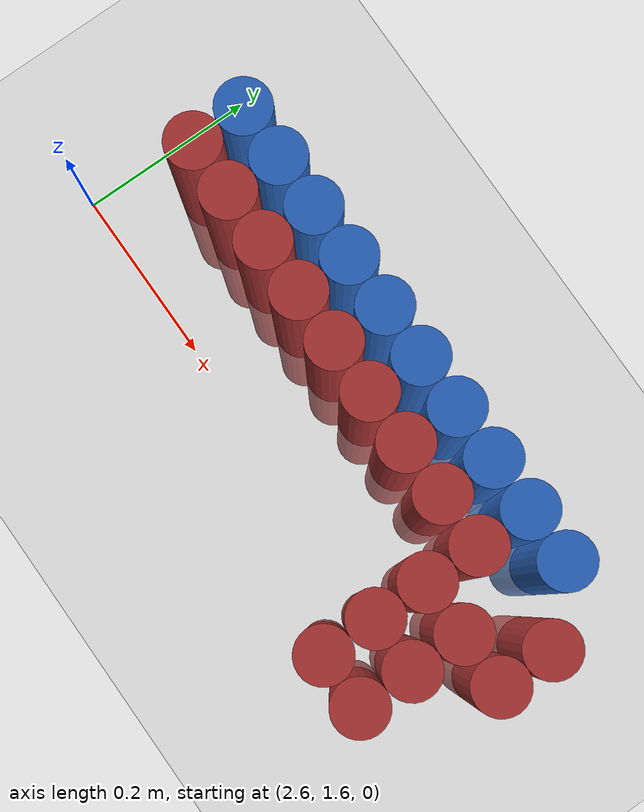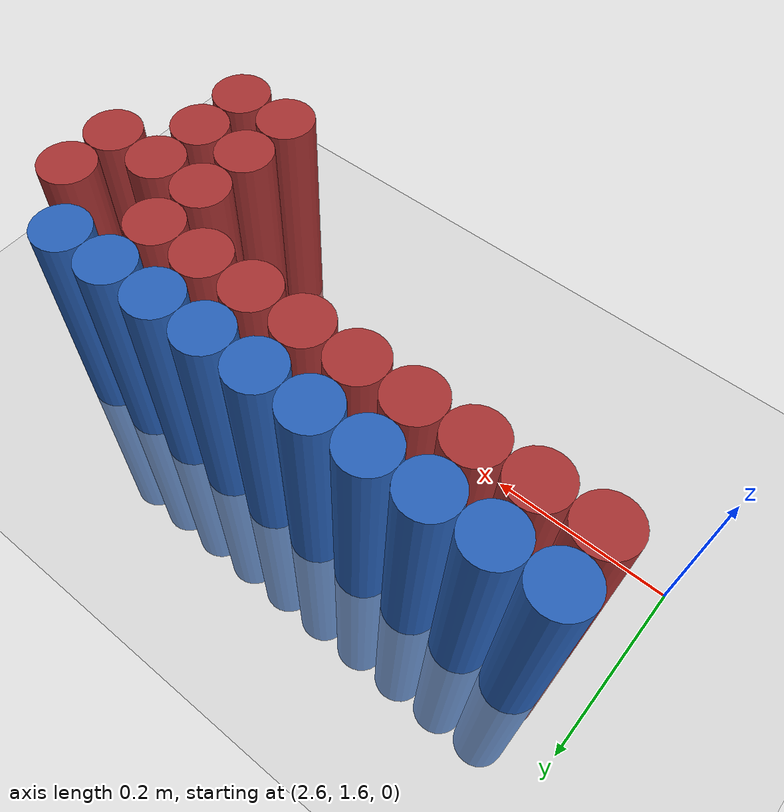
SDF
<sdf version="1.6">
 <world name="default">
  <model name="ground_plane">
   <static>1</static>
   <link name="link">
    <collision name="collision">
     <geometry><plane><normal>0 0 1</normal><size>100 100</size></plane></geometry>
     <surface><friction><ode><mu>100</mu><mu2>50</mu2></ode></friction></surface>
    </collision>
    <visual name="visual">
     <cast_shadows>0</cast_shadows>
     <geometry><plane><normal>0 0 1</normal><size>100 100</size></plane></geometry>
     <material>
      <script><uri>file://media/materials/scripts/gazebo.material</uri><name>Gazebo/Grey</name></script>
     </material>
    </visual>
   </link>
  </model>
  <model name="unit_cylinder_105">
   <static>1</static>
   <pose>2.670000 1.770000 0.000000 0.000000 0.000000 0.000000</pose>
   <link name="link">
    <inertial>
     <mass>1</mass>
     <inertia><ixx>0.145833</ixx><ixy>0</ixy><ixz>0</ixz><iyy>0.145833</iyy><iyz>0</iyz><izz>0.125</izz></inertia>
    </inertial>
    <collision name="collision">
     <geometry><cylinder><radius>0.030000</radius><length>0.5</length></cylinder></geometry>
    </collision>
    <visual name="visual">
     <geometry><cylinder><radius>0.030000</radius><length>0.5</length></cylinder></geometry>
     <material>
      <ambient>0.152000 0.379000 0.720000 1</ambient>
      <diffuse>0.152000 0.379000 0.720000 1</diffuse>
     </material>
     <material>
      <script><name>Gazebo/Grey</name><uri>file://media/materials/scripts/gazebo.material</uri></script>
     </material>
    </visual>
   </link>
  </model>
  <model name="unit_cylinder_106">
   <static>1</static>
   <pose>2.730000 1.770000 0.000000 0.000000 0.000000 0.000000</pose>
   <link name="link">
    <inertial>
     <mass>1</mass>
     <inertia><ixx>0.145833</ixx><ixy>0</ixy><ixz>0</ixz><iyy>0.145833</iyy><iyz>0</iyz><izz>0.125</izz></inertia>
    </inertial>
    <collision name="collision">
     <geometry><cylinder><radius>0.030000</radius><length>0.5</length></cylinder></geometry>
    </collision>
    <visual name="visual">
     <geometry><cylinder><radius>0.030000</radius><length>0.5</length></cylinder></geometry>
     <material>
      <ambient>0.152000 0.379000 0.720000 1</ambient>
      <diffuse>0.152000 0.379000 0.720000 1</diffuse>
     </material>
     <material>
      <script><name>Gazebo/Grey</name><uri>file://media/materials/scripts/gazebo.material</uri></script>
     </material>
    </visual>
   </link>
  </model>
  <model name="unit_cylinder_107">
   <static>1</static>
   <pose>2.790000 1.770000 0.000000 0.000000 0.000000 0.000000</pose>
   <link name="link">
    <inertial>
     <mass>1</mass>
     <inertia><ixx>0.145833</ixx><ixy>0</ixy><ixz>0</ixz><iyy>0.145833</iyy><iyz>0</iyz><izz>0.125</izz></inertia>
    </inertial>
    <collision name="collision">
     <geometry><cylinder><radius>0.030000</radius><length>0.5</length></cylinder></geometry>
    </collision>
    <visual name="visual">
     <geometry><cylinder><radius>0.030000</radius><length>0.5</length></cylinder></geometry>
     <material>
      <ambient>0.152000 0.379000 0.720000 1</ambient>
      <diffuse>0.152000 0.379000 0.720000 1</diffuse>
     </material>
     <material>
      <script><name>Gazebo/Grey</name><uri>file://media/materials/scripts/gazebo.material</uri></script>
     </material>
    </visual>
   </link>
  </model>
  <model name="unit_cylinder_108">
   <static>1</static>
   <pose>2.850000 1.770000 0.000000 0.000000 0.000000 0.000000</pose>
   <link name="link">
    <inertial>
     <mass>1</mass>
     <inertia><ixx>0.145833</ixx><ixy>0</ixy><ixz>0</ixz><iyy>0.145833</iyy><iyz>0</iyz><izz>0.125</izz></inertia>
    </inertial>
    <collision name="collision">
     <geometry><cylinder><radius>0.030000</radius><length>0.5</length></cylinder></geometry>
    </collision>
    <visual name="visual">
     <geometry><cylinder><radius>0.030000</radius><length>0.5</length></cylinder></geometry>
     <material>
      <ambient>0.152000 0.379000 0.720000 1</ambient>
      <diffuse>0.152000 0.379000 0.720000 1</diffuse>
     </material>
     <material>
      <script><name>Gazebo/Grey</name><uri>file://media/materials/scripts/gazebo.material</uri></script>
     </material>
    </visual>
   </link>
  </model>
  <model name="unit_cylinder_109">
   <static>1</static>
   <pose>2.910000 1.770000 0.000000 0.000000 0.000000 0.000000</pose>
   <link name="link">
    <inertial>
     <mass>1</mass>
     <inertia><ixx>0.145833</ixx><ixy>0</ixy><ixz>0</ixz><iyy>0.145833</iyy><iyz>0</iyz><izz>0.125</izz></inertia>
    </inertial>
    <collision name="collision">
     <geometry><cylinder><radius>0.030000</radius><length>0.5</length></cylinder></geometry>
    </collision>
    <visual name="visual">
     <geometry><cylinder><radius>0.030000</radius><length>0.5</length></cylinder></geometry>
     <material>
      <ambient>0.152000 0.379000 0.720000 1</ambient>
      <diffuse>0.152000 0.379000 0.720000 1</diffuse>
     </material>
     <material>
      <script><name>Gazebo/Grey</name><uri>file://media/materials/scripts/gazebo.material</uri></script>
     </material>
    </visual>
   </link>
  </model>
  <model name="unit_cylinder_110">
   <static>1</static>
   <pose>2.970000 1.770000 0.000000 0.000000 0.000000 0.000000</pose>
   <link name="link">
    <inertial>
     <mass>1</mass>
     <inertia><ixx>0.145833</ixx><ixy>0</ixy><ixz>0</ixz><iyy>0.145833</iyy><iyz>0</iyz><izz>0.125</izz></inertia>
    </inertial>
    <collision name="collision">
     <geometry><cylinder><radius>0.030000</radius><length>0.5</length></cylinder></geometry>
    </collision>
    <visual name="visual">
     <geometry><cylinder><radius>0.030000</radius><length>0.5</length></cylinder></geometry>
     <material>
      <ambient>0.152000 0.379000 0.720000 1</ambient>
      <diffuse>0.152000 0.379000 0.720000 1</diffuse>
     </material>
     <material>
      <script><name>Gazebo/Grey</name><uri>file://media/materials/scripts/gazebo.material</uri></script>
     </material>
    </visual>
   </link>
  </model>
  <model name="unit_cylinder_111">
   <static>1</static>
   <pose>3.030000 1.770000 0.000000 0.000000 0.000000 0.000000</pose>
   <link name="link">
    <inertial>
     <mass>1</mass>
     <inertia><ixx>0.145833</ixx><ixy>0</ixy><ixz>0</ixz><iyy>0.145833</iyy><iyz>0</iyz><izz>0.125</izz></inertia>
    </inertial>
    <collision name="collision">
     <geometry><cylinder><radius>0.030000</radius><length>0.5</length></cylinder></geometry>
    </collision>
    <visual name="visual">
     <geometry><cylinder><radius>0.030000</radius><length>0.5</length></cylinder></geometry>
     <material>
      <ambient>0.152000 0.379000 0.720000 1</ambient>
      <diffuse>0.152000 0.379000 0.720000 1</diffuse>
     </material>
     <material>
      <script><name>Gazebo/Grey</name><uri>file://media/materials/scripts/gazebo.material</uri></script>
     </material>
    </visual>
   </link>
  </model>
  <model name="unit_cylinder_112">
   <static>1</static>
   <pose>3.090000 1.770000 0.000000 0.000000 0.000000 0.000000</pose>
   <link name="link">
    <inertial>
     <mass>1</mass>
     <inertia><ixx>0.145833</ixx><ixy>0</ixy><ixz>0</ixz><iyy>0.145833</iyy><iyz>0</iyz><izz>0.125</izz></inertia>
    </inertial>
    <collision name="collision">
     <geometry><cylinder><radius>0.030000</radius><length>0.5</length></cylinder></geometry>
    </collision>
    <visual name="visual">
     <geometry><cylinder><radius>0.030000</radius><length>0.5</length></cylinder></geometry>
     <material>
      <ambient>0.152000 0.379000 0.720000 1</ambient>
      <diffuse>0.152000 0.379000 0.720000 1</diffuse>
     </material>
     <material>
      <script><name>Gazebo/Grey</name><uri>file://media/materials/scripts/gazebo.material</uri></script>
     </material>
    </visual>
   </link>
  </model>
  <model name="unit_cylinder_113">
   <static>1</static>
   <pose>3.150000 1.770000 0.000000 0.000000 0.000000 0.000000</pose>
   <link name="link">
    <inertial>
     <mass>1</mass>
     <inertia><ixx>0.145833</ixx><ixy>0</ixy><ixz>0</ixz><iyy>0.145833</iyy><iyz>0</iyz><izz>0.125</izz></inertia>
    </inertial>
    <collision name="collision">
     <geometry><cylinder><radius>0.030000</radius><length>0.5</length></cylinder></geometry>
    </collision>
    <visual name="visual">
     <geometry><cylinder><radius>0.030000</radius><length>0.5</length></cylinder></geometry>
     <material>
      <ambient>0.152000 0.379000 0.720000 1</ambient>
      <diffuse>0.152000 0.379000 0.720000 1</diffuse>
     </material>
     <material>
      <script><name>Gazebo/Grey</name><uri>file://media/materials/scripts/gazebo.material</uri></script>
     </material>
    </visual>
   </link>
  </model>
  <model name="unit_cylinder_114">
   <static>1</static>
   <pose>3.210000 1.770000 0.000000 0.000000 0.000000 0.000000</pose>
   <link name="link">
    <inertial>
     <mass>1</mass>
     <inertia><ixx>0.145833</ixx><ixy>0</ixy><ixz>0</ixz><iyy>0.145833</iyy><iyz>0</iyz><izz>0.125</izz></inertia>
    </inertial>
    <collision name="collision">
     <geometry><cylinder><radius>0.030000</radius><length>0.5</length></cylinder></geometry>
    </collision>
    <visual name="visual">
     <geometry><cylinder><radius>0.030000</radius><length>0.5</length></cylinder></geometry>
     <material>
      <ambient>0.152000 0.379000 0.720000 1</ambient>
      <diffuse>0.152000 0.379000 0.720000 1</diffuse>
     </material>
     <material>
      <script><name>Gazebo/Grey</name><uri>file://media/materials/scripts/gazebo.material</uri></script>
     </material>
    </visual>
   </link>
  </model>
  <model name="unit_cylinder_131">
   <static>1</static>
   <pose>2.670000 1.710000 0.000000 0.000000 0.000000 0.000000</pose>
   <link name="link">
    <inertial>
     <mass>1</mass>
     <inertia><ixx>0.145833</ixx><ixy>0</ixy><ixz>0</ixz><iyy>0.145833</iyy><iyz>0</iyz><izz>0.125</izz></inertia>
    </inertial>
    <collision name="collision">
     <geometry><cylinder><radius>0.030000</radius><length>0.5</length></cylinder></geometry>
    </collision>
    <visual name="visual">
     <geometry><cylinder><radius>0.030000</radius><length>0.5</length></cylinder></geometry>
     <material>
      <ambient>0.648000 0.192000 0.192000 1</ambient>
      <diffuse>0.648000 0.192000 0.192000 1</diffuse>
     </material>
     <material>
      <script><name>Gazebo/Grey</name><uri>file://media/materials/scripts/gazebo.material</uri></script>
     </material>
    </visual>
   </link>
  </model>
  <model name="unit_cylinder_132">
   <static>1</static>
   <pose>2.730000 1.710000 0.000000 0.000000 0.000000 0.000000</pose>
   <link name="link">
    <inertial>
     <mass>1</mass>
     <inertia><ixx>0.145833</ixx><ixy>0</ixy><ixz>0</ixz><iyy>0.145833</iyy><iyz>0</iyz><izz>0.125</izz></inertia>
    </inertial>
    <collision name="collision">
     <geometry><cylinder><radius>0.030000</radius><length>0.5</length></cylinder></geometry>
    </collision>
    <visual name="visual">
     <geometry><cylinder><radius>0.030000</radius><length>0.5</length></cylinder></geometry>
     <material>
      <ambient>0.648000 0.192000 0.192000 1</ambient>
      <diffuse>0.648000 0.192000 0.192000 1</diffuse>
     </material>
     <material>
      <script><name>Gazebo/Grey</name><uri>file://media/materials/scripts/gazebo.material</uri></script>
     </material>
    </visual>
   </link>
  </model>
  <model name="unit_cylinder_133">
   <static>1</static>
   <pose>2.790000 1.710000 0.000000 0.000000 0.000000 0.000000</pose>
   <link name="link">
    <inertial>
     <mass>1</mass>
     <inertia><ixx>0.145833</ixx><ixy>0</ixy><ixz>0</ixz><iyy>0.145833</iyy><iyz>0</iyz><izz>0.125</izz></inertia>
    </inertial>
    <collision name="collision">
     <geometry><cylinder><radius>0.030000</radius><length>0.5</length></cylinder></geometry>
    </collision>
    <visual name="visual">
     <geometry><cylinder><radius>0.030000</radius><length>0.5</length></cylinder></geometry>
     <material>
      <ambient>0.648000 0.192000 0.192000 1</ambient>
      <diffuse>0.648000 0.192000 0.192000 1</diffuse>
     </material>
     <material>
      <script><name>Gazebo/Grey</name><uri>file://media/materials/scripts/gazebo.material</uri></script>
     </material>
    </visual>
   </link>
  </model>
  <model name="unit_cylinder_134">
   <static>1</static>
   <pose>2.850000 1.710000 0.000000 0.000000 0.000000 0.000000</pose>
   <link name="link">
    <inertial>
     <mass>1</mass>
     <inertia><ixx>0.145833</ixx><ixy>0</ixy><ixz>0</ixz><iyy>0.145833</iyy><iyz>0</iyz><izz>0.125</izz></inertia>
    </inertial>
    <collision name="collision">
     <geometry><cylinder><radius>0.030000</radius><length>0.5</length></cylinder></geometry>
    </collision>
    <visual name="visual">
     <geometry><cylinder><radius>0.030000</radius><length>0.5</length></cylinder></geometry>
     <material>
      <ambient>0.648000 0.192000 0.192000 1</ambient>
      <diffuse>0.648000 0.192000 0.192000 1</diffuse>
     </material>
     <material>
      <script><name>Gazebo/Grey</name><uri>file://media/materials/scripts/gazebo.material</uri></script>
     </material>
    </visual>
   </link>
  </model>
  <model name="unit_cylinder_135">
   <static>1</static>
   <pose>2.910000 1.710000 0.000000 0.000000 0.000000 0.000000</pose>
   <link name="link">
    <inertial>
     <mass>1</mass>
     <inertia><ixx>0.145833</ixx><ixy>0</ixy><ixz>0</ixz><iyy>0.145833</iyy><iyz>0</iyz><izz>0.125</izz></inertia>
    </inertial>
    <collision name="collision">
     <geometry><cylinder><radius>0.030000</radius><length>0.5</length></cylinder></geometry>
    </collision>
    <visual name="visual">
     <geometry><cylinder><radius>0.030000</radius><length>0.5</length></cylinder></geometry>
     <material>
      <ambient>0.648000 0.192000 0.192000 1</ambient>
      <diffuse>0.648000 0.192000 0.192000 1</diffuse>
     </material>
     <material>
      <script><name>Gazebo/Grey</name><uri>file://media/materials/scripts/gazebo.material</uri></script>
     </material>
    </visual>
   </link>
  </model>
  <model name="unit_cylinder_136">
   <static>1</static>
   <pose>2.970000 1.710000 0.000000 0.000000 0.000000 0.000000</pose>
   <link name="link">
    <inertial>
     <mass>1</mass>
     <inertia><ixx>0.145833</ixx><ixy>0</ixy><ixz>0</ixz><iyy>0.145833</iyy><iyz>0</iyz><izz>0.125</izz></inertia>
    </inertial>
    <collision name="collision">
     <geometry><cylinder><radius>0.030000</radius><length>0.5</length></cylinder></geometry>
    </collision>
    <visual name="visual">
     <geometry><cylinder><radius>0.030000</radius><length>0.5</length></cylinder></geometry>
     <material>
      <ambient>0.648000 0.192000 0.192000 1</ambient>
      <diffuse>0.648000 0.192000 0.192000 1</diffuse>
     </material>
     <material>
      <script><name>Gazebo/Grey</name><uri>file://media/materials/scripts/gazebo.material</uri></script>
     </material>
    </visual>
   </link>
  </model>
  <model name="unit_cylinder_137">
   <static>1</static>
   <pose>3.030000 1.710000 0.000000 0.000000 0.000000 0.000000</pose>
   <link name="link">
    <inertial>
     <mass>1</mass>
     <inertia><ixx>0.145833</ixx><ixy>0</ixy><ixz>0</ixz><iyy>0.145833</iyy><iyz>0</iyz><izz>0.125</izz></inertia>
    </inertial>
    <collision name="collision">
     <geometry><cylinder><radius>0.030000</radius><length>0.5</length></cylinder></geometry>
    </collision>
    <visual name="visual">
     <geometry><cylinder><radius>0.030000</radius><length>0.5</length></cylinder></geometry>
     <material>
      <ambient>0.648000 0.192000 0.192000 1</ambient>
      <diffuse>0.648000 0.192000 0.192000 1</diffuse>
     </material>
     <material>
      <script><name>Gazebo/Grey</name><uri>file://media/materials/scripts/gazebo.material</uri></script>
     </material>
    </visual>
   </link>
  </model>
  <model name="unit_cylinder_138">
   <static>1</static>
   <pose>3.090000 1.710000 0.000000 0.000000 0.000000 0.000000</pose>
   <link name="link">
    <inertial>
     <mass>1</mass>
     <inertia><ixx>0.145833</ixx><ixy>0</ixy><ixz>0</ixz><iyy>0.145833</iyy><iyz>0</iyz><izz>0.125</izz></inertia>
    </inertial>
    <collision name="collision">
     <geometry><cylinder><radius>0.030000</radius><length>0.5</length></cylinder></geometry>
    </collision>
    <visual name="visual">
     <geometry><cylinder><radius>0.030000</radius><length>0.5</length></cylinder></geometry>
     <material>
      <ambient>0.648000 0.192000 0.192000 1</ambient>
      <diffuse>0.648000 0.192000 0.192000 1</diffuse>
     </material>
     <material>
      <script><name>Gazebo/Grey</name><uri>file://media/materials/scripts/gazebo.material</uri></script>
     </material>
    </visual>
   </link>
  </model>
  <model name="unit_cylinder_139">
   <static>1</static>
   <pose>3.150000 1.710000 0.000000 0.000000 0.000000 0.000000</pose>
   <link name="link">
    <inertial>
     <mass>1</mass>
     <inertia><ixx>0.145833</ixx><ixy>0</ixy><ixz>0</ixz><iyy>0.145833</iyy><iyz>0</iyz><izz>0.125</izz></inertia>
    </inertial>
    <collision name="collision">
     <geometry><cylinder><radius>0.030000</radius><length>0.5</length></cylinder></geometry>
    </collision>
    <visual name="visual">
     <geometry><cylinder><radius>0.030000</radius><length>0.5</length></cylinder></geometry>
     <material>
      <ambient>0.648000 0.192000 0.192000 1</ambient>
      <diffuse>0.648000 0.192000 0.192000 1</diffuse>
     </material>
     <material>
      <script><name>Gazebo/Grey</name><uri>file://media/materials/scripts/gazebo.material</uri></script>
     </material>
    </visual>
   </link>
  </model>
  <model name="unit_cylinder_140">
   <static>1</static>
   <pose>3.270000 1.710000 0.000000 0.000000 0.000000 0.000000</pose>
   <link name="link">
    <inertial>
     <mass>1</mass>
     <inertia><ixx>0.145833</ixx><ixy>0</ixy><ixz>0</ixz><iyy>0.145833</iyy><iyz>0</iyz><izz>0.125</izz></inertia>
    </inertial>
    <collision name="collision">
     <geometry><cylinder><radius>0.030000</radius><length>0.5</length></cylinder></geometry>
    </collision>
    <visual name="visual">
     <geometry><cylinder><radius>0.030000</radius><length>0.5</length></cylinder></geometry>
     <material>
      <ambient>0.648000 0.192000 0.192000 1</ambient>
      <diffuse>0.648000 0.192000 0.192000 1</diffuse>
     </material>
     <material>
      <script><name>Gazebo/Grey</name><uri>file://media/materials/scripts/gazebo.material</uri></script>
     </material>
    </visual>
   </link>
  </model>
  <model name="unit_cylinder_153">
   <static>1</static>
   <pose>3.150000 1.650000 0.000000 0.000000 0.000000 0.000000</pose>
   <link name="link">
    <inertial>
     <mass>1</mass>
     <inertia><ixx>0.145833</ixx><ixy>0</ixy><ixz>0</ixz><iyy>0.145833</iyy><iyz>0</iyz><izz>0.125</izz></inertia>
    </inertial>
    <collision name="collision">
     <geometry><cylinder><radius>0.030000</radius><length>0.5</length></cylinder></geometry>
    </collision>
    <visual name="visual">
     <geometry><cylinder><radius>0.030000</radius><length>0.5</length></cylinder></geometry>
     <material>
      <ambient>0.648000 0.192000 0.192000 1</ambient>
      <diffuse>0.648000 0.192000 0.192000 1</diffuse>
     </material>
     <material>
      <script><name>Gazebo/Grey</name><uri>file://media/materials/scripts/gazebo.material</uri></script>
     </material>
    </visual>
   </link>
  </model>
  <model name="unit_cylinder_154">
   <static>1</static>
   <pose>3.210000 1.650000 0.000000 0.000000 0.000000 0.000000</pose>
   <link name="link">
    <inertial>
     <mass>1</mass>
     <inertia><ixx>0.145833</ixx><ixy>0</ixy><ixz>0</ixz><iyy>0.145833</iyy><iyz>0</iyz><izz>0.125</izz></inertia>
    </inertial>
    <collision name="collision">
     <geometry><cylinder><radius>0.030000</radius><length>0.5</length></cylinder></geometry>
    </collision>
    <visual name="visual">
     <geometry><cylinder><radius>0.030000</radius><length>0.5</length></cylinder></geometry>
     <material>
      <ambient>0.648000 0.192000 0.192000 1</ambient>
      <diffuse>0.648000 0.192000 0.192000 1</diffuse>
     </material>
     <material>
      <script><name>Gazebo/Grey</name><uri>file://media/materials/scripts/gazebo.material</uri></script>
     </material>
    </visual>
   </link>
  </model>
  <model name="unit_cylinder_155">
   <static>1</static>
   <pose>3.270000 1.650000 0.000000 0.000000 0.000000 0.000000</pose>
   <link name="link">
    <inertial>
     <mass>1</mass>
     <inertia><ixx>0.145833</ixx><ixy>0</ixy><ixz>0</ixz><iyy>0.145833</iyy><iyz>0</iyz><izz>0.125</izz></inertia>
    </inertial>
    <collision name="collision">
     <geometry><cylinder><radius>0.030000</radius><length>0.5</length></cylinder></geometry>
    </collision>
    <visual name="visual">
     <geometry><cylinder><radius>0.030000</radius><length>0.5</length></cylinder></geometry>
     <material>
      <ambient>0.648000 0.192000 0.192000 1</ambient>
      <diffuse>0.648000 0.192000 0.192000 1</diffuse>
     </material>
     <material>
      <script><name>Gazebo/Grey</name><uri>file://media/materials/scripts/gazebo.material</uri></script>
     </material>
    </visual>
   </link>
  </model>
  <model name="unit_cylinder_162">
   <static>1</static>
   <pose>3.150000 1.590000 0.000000 0.000000 0.000000 0.000000</pose>
   <link name="link">
    <inertial>
     <mass>1</mass>
     <inertia><ixx>0.145833</ixx><ixy>0</ixy><ixz>0</ixz><iyy>0.145833</iyy><iyz>0</iyz><izz>0.125</izz></inertia>
    </inertial>
    <collision name="collision">
     <geometry><cylinder><radius>0.030000</radius><length>0.5</length></cylinder></geometry>
    </collision>
    <visual name="visual">
     <geometry><cylinder><radius>0.030000</radius><length>0.5</length></cylinder></geometry>
     <material>
      <ambient>0.648000 0.192000 0.192000 1</ambient>
      <diffuse>0.648000 0.192000 0.192000 1</diffuse>
     </material>
     <material>
      <script><name>Gazebo/Grey</name><uri>file://media/materials/scripts/gazebo.material</uri></script>
     </material>
    </visual>
   </link>
  </model>
  <model name="unit_cylinder_163">
   <static>1</static>
   <pose>3.210000 1.590000 0.000000 0.000000 0.000000 0.000000</pose>
   <link name="link">
    <inertial>
     <mass>1</mass>
     <inertia><ixx>0.145833</ixx><ixy>0</ixy><ixz>0</ixz><iyy>0.145833</iyy><iyz>0</iyz><izz>0.125</izz></inertia>
    </inertial>
    <collision name="collision">
     <geometry><cylinder><radius>0.030000</radius><length>0.5</length></cylinder></geometry>
    </collision>
    <visual name="visual">
     <geometry><cylinder><radius>0.030000</radius><length>0.5</length></cylinder></geometry>
     <material>
      <ambient>0.648000 0.192000 0.192000 1</ambient>
      <diffuse>0.648000 0.192000 0.192000 1</diffuse>
     </material>
     <material>
      <script><name>Gazebo/Grey</name><uri>file://media/materials/scripts/gazebo.material</uri></script>
     </material>
    </visual>
   </link>
  </model>
  <model name="unit_cylinder_167">
   <static>1</static>
   <pose>3.150000 1.530000 0.000000 0.000000 0.000000 0.000000</pose>
   <link name="link">
    <inertial>
     <mass>1</mass>
     <inertia><ixx>0.145833</ixx><ixy>0</ixy><ixz>0</ixz><iyy>0.145833</iyy><iyz>0</iyz><izz>0.125</izz></inertia>
    </inertial>
    <collision name="collision">
     <geometry><cylinder><radius>0.030000</radius><length>0.5</length></cylinder></geometry>
    </collision>
    <visual name="visual">
     <geometry><cylinder><radius>0.030000</radius><length>0.5</length></cylinder></geometry>
     <material>
      <ambient>0.648000 0.192000 0.192000 1</ambient>
      <diffuse>0.648000 0.192000 0.192000 1</diffuse>
     </material>
     <material>
      <script><name>Gazebo/Grey</name><uri>file://media/materials/scripts/gazebo.material</uri></script>
     </material>
    </visual>
   </link>
  </model>
  <model name="unit_cylinder_168">
   <static>1</static>
   <pose>3.210000 1.530000 0.000000 0.000000 0.000000 0.000000</pose>
   <link name="link">
    <inertial>
     <mass>1</mass>
     <inertia><ixx>0.145833</ixx><ixy>0</ixy><ixz>0</ixz><iyy>0.145833</iyy><iyz>0</iyz><izz>0.125</izz></inertia>
    </inertial>
    <collision name="collision">
     <geometry><cylinder><radius>0.030000</radius><length>0.5</length></cylinder></geometry>
    </collision>
    <visual name="visual">
     <geometry><cylinder><radius>0.030000</radius><length>0.5</length></cylinder></geometry>
     <material>
      <ambient>0.648000 0.192000 0.192000 1</ambient>
      <diffuse>0.648000 0.192000 0.192000 1</diffuse>
     </material>
     <material>
      <script><name>Gazebo/Grey</name><uri>file://media/materials/scripts/gazebo.material</uri></script>
     </material>
    </visual>
   </link>
  </model>
 </world>
</sdf>
